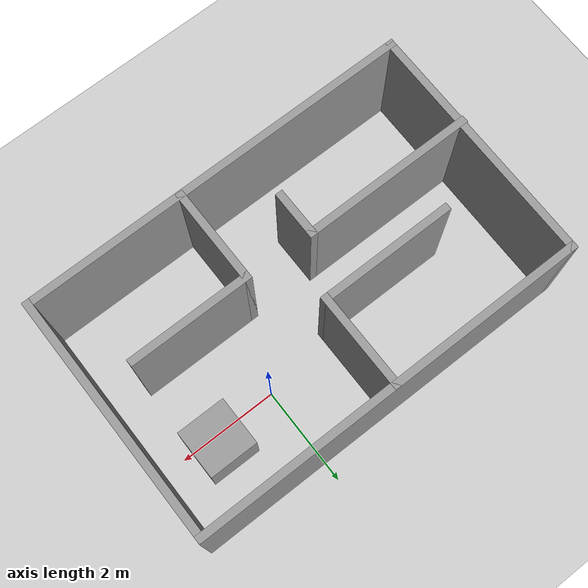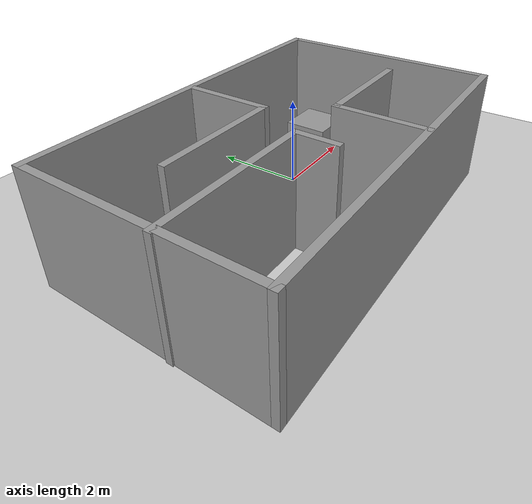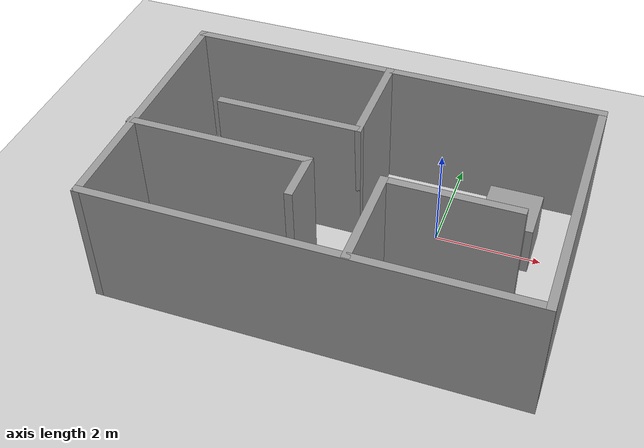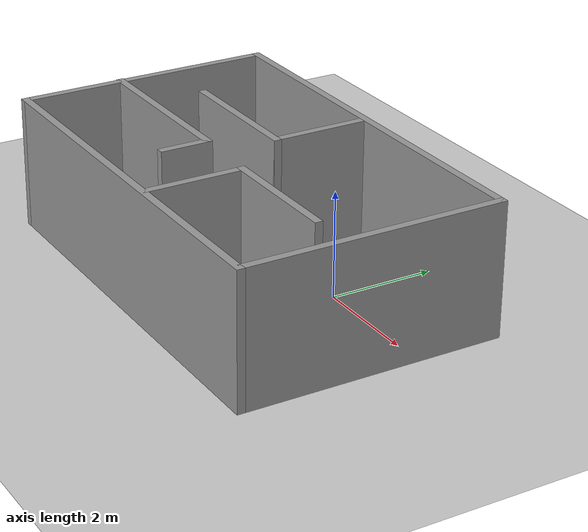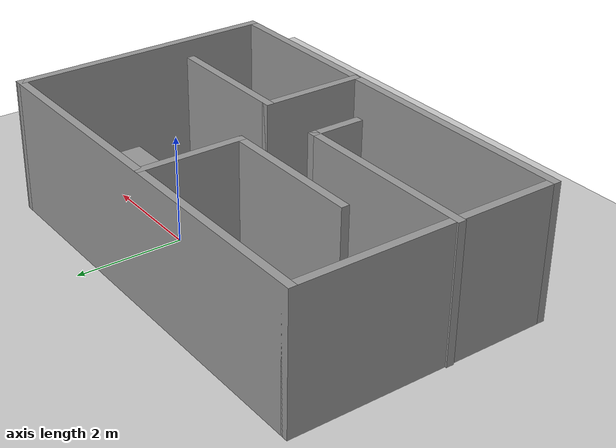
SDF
<sdf version="1.7">
 <world name="default">
  <light name="sun" type="directional">
   <pose>0 0 10 0 -0 0</pose>
   <diffuse>0.8 0.8 0.8 1</diffuse>
   <specular>0.2 0.2 0.2 1</specular>
   <attenuation>
    <range>1000</range>
    <constant>0.9</constant>
    <linear>0.01</linear>
    <quadratic>0.001</quadratic>
   </attenuation>
   <direction>-0.5 0.1 -0.9</direction>
   <spot><inner_angle>0</inner_angle><outer_angle>0</outer_angle><falloff>0</falloff></spot>
  </light>
  <model name="ground_plane">
   <static>1</static>
   <link name="link">
    <collision name="collision">
     <geometry><plane><normal>0 0 1</normal><size>100 100</size></plane></geometry>
     <surface><friction><ode><mu>100</mu><mu2>50</mu2></ode></friction></surface>
    </collision>
    <visual name="visual">
     <cast_shadows>0</cast_shadows>
     <geometry><plane><normal>0 0 1</normal><size>100 100</size></plane></geometry>
     <material>
      <script><uri>file://media/materials/scripts/gazebo.material</uri><name>Gazebo/Grey</name></script>
     </material>
    </visual>
   </link>
  </model>
  <gravity>0 0 -9.8</gravity>
  <magnetic_field>6e-06 2.3e-05 -4.2e-05</magnetic_field>
  <atmosphere type="adiabatic"/>
  <physics type="ode">
   <max_step_size>0.001</max_step_size>
   <real_time_factor>1</real_time_factor>
   <real_time_update_rate>1000</real_time_update_rate>
  </physics>
  <scene><ambient>0.4 0.4 0.4 1</ambient><background>0.7 0.7 0.7 1</background><shadows>1</shadows></scene>
  <audio><device>default</device></audio>
  <spherical_coordinates>
   <surface_model>EARTH_WGS84</surface_model>
   <latitude_deg>0</latitude_deg>
   <longitude_deg>0</longitude_deg>
   <elevation>0</elevation>
   <heading_deg>0</heading_deg>
  </spherical_coordinates>
  <model name="room">
   <pose>-1.42138 -0.416124 0 0 -0 0</pose>
   <link name="Wall_11">
    <collision name="Wall_11_Collision">
     <geometry><box><size>2.75 0.15 2.5</size></box></geometry>
     <pose>0 0 1.25 0 -0 0</pose>
    </collision>
    <visual name="Wall_11_Visual">
     <pose>0 0 1.25 0 -0 0</pose>
     <geometry><box><size>2.75 0.15 2.5</size></box></geometry>
     <material>
      <script><uri>file://media/materials/scripts/gazebo.material</uri><name>Gazebo/Grey</name></script>
      <ambient>1 1 1 1</ambient>
     </material>
     <meta><layer>0</layer></meta>
    </visual>
    <pose>-1.35734 0.114434 0 0 -0 3.14159</pose>
   </link>
   <link name="Wall_13">
    <collision name="Wall_13_Collision">
     <geometry><box><size>3.5 0.15 2.5</size></box></geometry>
     <pose>0 0 1.25 0 -0 0</pose>
    </collision>
    <visual name="Wall_13_Visual">
     <pose>0 0 1.25 0 -0 0</pose>
     <geometry><box><size>3.5 0.15 2.5</size></box></geometry>
     <material>
      <script><uri>file://media/materials/scripts/gazebo.material</uri><name>Gazebo/Grey</name></script>
      <ambient>1 1 1 1</ambient>
     </material>
     <meta><layer>0</layer></meta>
    </visual>
    <pose>-2.26426 -0.952034 0 0 -0 0</pose>
   </link>
   <link name="Wall_14">
    <collision name="Wall_14_Collision">
     <geometry><box><size>1 0.15 2.5</size></box></geometry>
     <pose>0 0 1.25 0 -0 0</pose>
    </collision>
    <visual name="Wall_14_Visual">
     <pose>0 0 1.25 0 -0 0</pose>
     <geometry><box><size>1 0.15 2.5</size></box></geometry>
     <material>
      <script><uri>file://media/materials/scripts/gazebo.material</uri><name>Gazebo/Grey</name></script>
      <ambient>1 1 1 1</ambient>
     </material>
     <meta><layer>0</layer></meta>
    </visual>
    <pose>-0.589259 -1.37703 0 0 -0 -1.5708</pose>
   </link>
   <link name="Wall_16">
    <collision name="Wall_16_Collision">
     <geometry><box><size>2 0.15 2.5</size></box></geometry>
     <pose>0 0 1.25 0 -0 0</pose>
    </collision>
    <visual name="Wall_16_Visual">
     <pose>0 0 1.25 0 -0 0</pose>
     <geometry><box><size>2 0.15 2.5</size></box></geometry>
     <material>
      <script><uri>file://media/materials/scripts/gazebo.material</uri><name>Gazebo/Grey</name></script>
      <ambient>1 1 1 1</ambient>
     </material>
     <meta><layer>0</layer></meta>
    </visual>
    <pose>0.767317 -1.93782 0 0 -0 1.5708</pose>
   </link>
   <link name="Wall_17">
    <collision name="Wall_17_Collision">
     <geometry><box><size>2.5 0.15 2.5</size></box></geometry>
     <pose>0 0 1.25 0 -0 0</pose>
    </collision>
    <visual name="Wall_17_Visual">
     <pose>0 0 1.25 0 -0 0</pose>
     <geometry><box><size>2.5 0.15 2.5</size></box></geometry>
     <material>
      <script><uri>file://media/materials/scripts/gazebo.material</uri><name>Gazebo/Grey</name></script>
      <ambient>1 1 1 1</ambient>
     </material>
     <meta><layer>0</layer></meta>
    </visual>
    <pose>1.94232 -1.01282 0 0 -0 0</pose>
   </link>
   <link name="Wall_2">
    <collision name="Wall_2_Collision">
     <geometry><box><size>8 0.15 2.5</size></box></geometry>
     <pose>0 0 1.25 0 -0 0</pose>
    </collision>
    <visual name="Wall_2_Visual">
     <pose>0 0 1.25 0 -0 0</pose>
     <geometry><box><size>8 0.15 2.5</size></box></geometry>
     <material>
      <script><uri>file://media/materials/scripts/gazebo.material</uri><name>Gazebo/Grey</name></script>
      <ambient>1 1 1 1</ambient>
     </material>
     <meta><layer>0</layer></meta>
    </visual>
    <pose>0.014259 1.9675 0 0 -0 0</pose>
   </link>
   <link name="Wall_4">
    <collision name="Wall_4_Collision">
     <geometry><box><size>5 0.15 2.5</size></box></geometry>
     <pose>0 0 1.25 0 -0 0</pose>
    </collision>
    <visual name="Wall_4_Visual">
     <pose>0 0 1.25 0 -0 0</pose>
     <geometry><box><size>5 0.15 2.5</size></box></geometry>
     <material>
      <script><uri>file://media/materials/scripts/gazebo.material</uri><name>Gazebo/Grey</name></script>
      <ambient>1 1 1 1</ambient>
     </material>
     <meta><layer>0</layer></meta>
    </visual>
    <pose>3.93926 -0.4575 0 0 -0 -1.5708</pose>
   </link>
   <link name="Wall_5">
    <collision name="Wall_5_Collision">
     <geometry><box><size>8 0.15 2.5</size></box></geometry>
     <pose>0 0 1.25 0 -0 0</pose>
    </collision>
    <visual name="Wall_5_Visual">
     <pose>0 0 1.25 0 -0 0</pose>
     <geometry><box><size>8 0.15 2.5</size></box></geometry>
     <material>
      <script><uri>file://media/materials/scripts/gazebo.material</uri><name>Gazebo/Grey</name></script>
      <ambient>1 1 1 1</ambient>
     </material>
     <meta><layer>0</layer></meta>
    </visual>
    <pose>0.014259 -2.8825 0 0 -0 3.14159</pose>
   </link>
   <link name="Wall_6">
    <collision name="Wall_6_Collision">
     <geometry><box><size>5 0.15 2.5</size></box></geometry>
     <pose>0 0 1.25 0 -0 0</pose>
    </collision>
    <visual name="Wall_6_Visual">
     <pose>0 0 1.25 0 -0 0</pose>
     <geometry><box><size>5 0.15 2.5</size></box></geometry>
     <material>
      <script><uri>file://media/materials/scripts/gazebo.material</uri><name>Gazebo/Grey</name></script>
      <ambient>1 1 1 1</ambient>
     </material>
     <meta><layer>0</layer></meta>
    </visual>
    <pose>-3.91074 -0.4575 0 0 -0 1.5708</pose>
   </link>
   <link name="Wall_8">
    <collision name="Wall_8_Collision">
     <geometry><box><size>2 0.15 2.5</size></box></geometry>
     <pose>0 0 1.25 0 -0 0</pose>
    </collision>
    <visual name="Wall_8_Visual">
     <pose>0 0 1.25 0 -0 0</pose>
     <geometry><box><size>2 0.15 2.5</size></box></geometry>
     <material>
      <script><uri>file://media/materials/scripts/gazebo.material</uri><name>Gazebo/Grey</name></script>
      <ambient>1 1 1 1</ambient>
     </material>
     <meta><layer>0</layer></meta>
    </visual>
    <pose>-0.05734 1.03943 0 0 -0 -1.5708</pose>
   </link>
   <static>1</static>
  </model>
  <model name="unit_box">
   <pose>1.31126 0.194622 0.5 0 -0 0</pose>
   <link name="link">
    <inertial>
     <mass>1</mass>
     <inertia>
      <ixx>0.166667</ixx>
      <ixy>0</ixy>
      <ixz>0</ixz>
      <iyy>0.166667</iyy>
      <iyz>0</iyz>
      <izz>0.166667</izz>
     </inertia>
    </inertial>
    <collision name="collision"><geometry><box><size>1 1 1</size></box></geometry></collision>
    <visual name="visual">
     <geometry><box><size>1 1 1</size></box></geometry>
     <material>
      <script><name>Gazebo/Grey</name><uri>file://media/materials/scripts/gazebo.material</uri></script>
     </material>
    </visual>
   </link>
  </model>
 </world>
</sdf>
